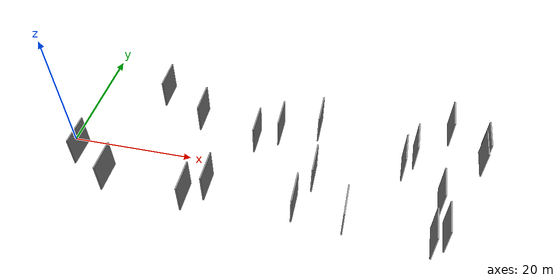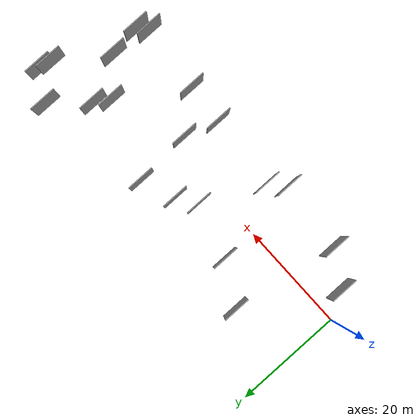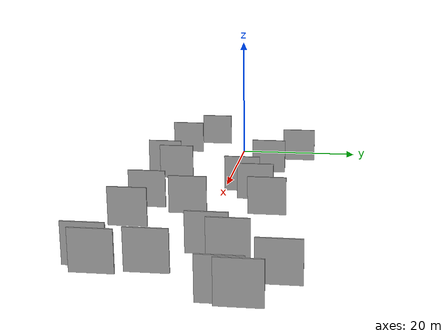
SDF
<sdf version="1.6">
 <world name="default">
  <scene>
   <sky><clouds><speed>12</speed></clouds></sky>
   <ambient>0.4 0.4 0.4 1</ambient>
   <background>0.7 0.7 0.7 1</background>
   <shadows>1</shadows>
  </scene>
  <gravity>0 0 -9.8066</gravity>
  <magnetic_field>6e-06 2.3e-05 -4.2e-05</magnetic_field>
  <physics default="0" name="default_physics" type="ode">
   <ode>
    <solver>
     <type>quick</type>
     <iters>10</iters>
     <sor>1.0</sor>
     <use_dynamic_moi_rescaling>0</use_dynamic_moi_rescaling>
    </solver>
    <constraints>
     <cfm>0</cfm>
     <erp>0.2</erp>
     <contact_max_correcting_vel>100</contact_max_correcting_vel>
     <contact_surface_layer>0.001</contact_surface_layer>
    </constraints>
   </ode>
   <max_step_size>0.004</max_step_size>
   <real_time_factor>1</real_time_factor>
   <real_time_update_rate>250</real_time_update_rate>
  </physics>
  <light name="sun" type="directional">
   <pose>0 0 10 0 0 0</pose>
   <diffuse>0.8 0.8 0.8 1</diffuse>
   <specular>0.2 0.2 0.2 1</specular>
   <attenuation>
    <range>1000</range>
    <constant>0.9</constant>
    <linear>0.01</linear>
    <quadratic>0.001</quadratic>
   </attenuation>
   <direction>-0.5 0.1 -0.9</direction>
  </light>
  <model name="grey_wall_1">
   <static>1</static>
   <pose>13.2451 10.8128 2.5 0.000000 0.000000 1.570796</pose>
   <link name="link">
    <pose>0 0 2.50 0 0 0</pose>
    <collision name="collision"><geometry><box><size>5.00 0.2 5.00</size></box></geometry></collision>
    <visual name="visual">
     <cast_shadows>0</cast_shadows>
     <geometry><box><size>5.00 0.2 5.00</size></box></geometry>
     <material>
      <script>
       <uri>model://grey_wall/materials/scripts</uri>
       <uri>model://grey_wall/materials/textures</uri>
       <name>vrc/grey_wall</name>
      </script>
     </material>
    </visual>
   </link>
  </model>
  <model name="grey_wall_2">
   <static>1</static>
   <pose>39.5926 8.1838 2.5 0.000000 0.000000 1.570796</pose>
   <link name="link">
    <pose>0 0 2.50 0 0 0</pose>
    <collision name="collision"><geometry><box><size>5.00 0.2 5.00</size></box></geometry></collision>
    <visual name="visual">
     <cast_shadows>0</cast_shadows>
     <geometry><box><size>5.00 0.2 5.00</size></box></geometry>
     <material>
      <script>
       <uri>model://grey_wall/materials/scripts</uri>
       <uri>model://grey_wall/materials/textures</uri>
       <name>vrc/grey_wall</name>
      </script>
     </material>
    </visual>
   </link>
  </model>
  <model name="grey_wall_3">
   <static>1</static>
   <pose>58.6448 -2.6094 2.5 0.000000 0.000000 1.570796</pose>
   <link name="link">
    <pose>0 0 2.50 0 0 0</pose>
    <collision name="collision"><geometry><box><size>5.00 0.2 5.00</size></box></geometry></collision>
    <visual name="visual">
     <cast_shadows>0</cast_shadows>
     <geometry><box><size>5.00 0.2 5.00</size></box></geometry>
     <material>
      <script>
       <uri>model://grey_wall/materials/scripts</uri>
       <uri>model://grey_wall/materials/textures</uri>
       <name>vrc/grey_wall</name>
      </script>
     </material>
    </visual>
   </link>
  </model>
  <model name="grey_wall_4">
   <static>1</static>
   <pose>20.6248 6.5667 2.5 0.000000 0.000000 1.570796</pose>
   <link name="link">
    <pose>0 0 2.50 0 0 0</pose>
    <collision name="collision"><geometry><box><size>5.00 0.2 5.00</size></box></geometry></collision>
    <visual name="visual">
     <cast_shadows>0</cast_shadows>
     <geometry><box><size>5.00 0.2 5.00</size></box></geometry>
     <material>
      <script>
       <uri>model://grey_wall/materials/scripts</uri>
       <uri>model://grey_wall/materials/textures</uri>
       <name>vrc/grey_wall</name>
      </script>
     </material>
    </visual>
   </link>
  </model>
  <model name="grey_wall_5">
   <static>1</static>
   <pose>53.0732 2.7881 2.5 0.000000 0.000000 1.570796</pose>
   <link name="link">
    <pose>0 0 2.50 0 0 0</pose>
    <collision name="collision"><geometry><box><size>5.00 0.2 5.00</size></box></geometry></collision>
    <visual name="visual">
     <cast_shadows>0</cast_shadows>
     <geometry><box><size>5.00 0.2 5.00</size></box></geometry>
     <material>
      <script>
       <uri>model://grey_wall/materials/scripts</uri>
       <uri>model://grey_wall/materials/textures</uri>
       <name>vrc/grey_wall</name>
      </script>
     </material>
    </visual>
   </link>
  </model>
  <model name="grey_wall_6">
   <static>1</static>
   <pose>30.2389 3.7222 2.5 0.000000 0.000000 1.570796</pose>
   <link name="link">
    <pose>0 0 2.50 0 0 0</pose>
    <collision name="collision"><geometry><box><size>5.00 0.2 5.00</size></box></geometry></collision>
    <visual name="visual">
     <cast_shadows>0</cast_shadows>
     <geometry><box><size>5.00 0.2 5.00</size></box></geometry>
     <material>
      <script>
       <uri>model://grey_wall/materials/scripts</uri>
       <uri>model://grey_wall/materials/textures</uri>
       <name>vrc/grey_wall</name>
      </script>
     </material>
    </visual>
   </link>
  </model>
  <model name="grey_wall_7">
   <static>1</static>
   <pose>33.6162 5.9820 2.5 0.000000 0.000000 1.570796</pose>
   <link name="link">
    <pose>0 0 2.50 0 0 0</pose>
    <collision name="collision"><geometry><box><size>5.00 0.2 5.00</size></box></geometry></collision>
    <visual name="visual">
     <cast_shadows>0</cast_shadows>
     <geometry><box><size>5.00 0.2 5.00</size></box></geometry>
     <material>
      <script>
       <uri>model://grey_wall/materials/scripts</uri>
       <uri>model://grey_wall/materials/textures</uri>
       <name>vrc/grey_wall</name>
      </script>
     </material>
    </visual>
   </link>
  </model>
  <model name="grey_wall_8">
   <static>1</static>
   <pose>9.9289 -8.1505 2.5 0.000000 0.000000 1.570796</pose>
   <link name="link">
    <pose>0 0 2.50 0 0 0</pose>
    <collision name="collision"><geometry><box><size>5.00 0.2 5.00</size></box></geometry></collision>
    <visual name="visual">
     <cast_shadows>0</cast_shadows>
     <geometry><box><size>5.00 0.2 5.00</size></box></geometry>
     <material>
      <script>
       <uri>model://grey_wall/materials/scripts</uri>
       <uri>model://grey_wall/materials/textures</uri>
       <name>vrc/grey_wall</name>
      </script>
     </material>
    </visual>
   </link>
  </model>
  <model name="grey_wall_9">
   <static>1</static>
   <pose>40.2540 -2.0365 2.5 0.000000 0.000000 1.570796</pose>
   <link name="link">
    <pose>0 0 2.50 0 0 0</pose>
    <collision name="collision"><geometry><box><size>5.00 0.2 5.00</size></box></geometry></collision>
    <visual name="visual">
     <cast_shadows>0</cast_shadows>
     <geometry><box><size>5.00 0.2 5.00</size></box></geometry>
     <material>
      <script>
       <uri>model://grey_wall/materials/scripts</uri>
       <uri>model://grey_wall/materials/textures</uri>
       <name>vrc/grey_wall</name>
      </script>
     </material>
    </visual>
   </link>
  </model>
  <model name="grey_wall_10">
   <static>1</static>
   <pose>25.2299 -6.8464 2.5 0.000000 0.000000 1.570796</pose>
   <link name="link">
    <pose>0 0 2.50 0 0 0</pose>
    <collision name="collision"><geometry><box><size>5.00 0.2 5.00</size></box></geometry></collision>
    <visual name="visual">
     <cast_shadows>0</cast_shadows>
     <geometry><box><size>5.00 0.2 5.00</size></box></geometry>
     <material>
      <script>
       <uri>model://grey_wall/materials/scripts</uri>
       <uri>model://grey_wall/materials/textures</uri>
       <name>vrc/grey_wall</name>
      </script>
     </material>
    </visual>
   </link>
  </model>
  <model name="grey_wall_11">
   <static>1</static>
   <pose>54.7142 5.4591 2.5 0.000000 0.000000 1.570796</pose>
   <link name="link">
    <pose>0 0 2.50 0 0 0</pose>
    <collision name="collision"><geometry><box><size>5.00 0.2 5.00</size></box></geometry></collision>
    <visual name="visual">
     <cast_shadows>0</cast_shadows>
     <geometry><box><size>5.00 0.2 5.00</size></box></geometry>
     <material>
      <script>
       <uri>model://grey_wall/materials/scripts</uri>
       <uri>model://grey_wall/materials/textures</uri>
       <name>vrc/grey_wall</name>
      </script>
     </material>
    </visual>
   </link>
  </model>
  <model name="grey_wall_12">
   <static>1</static>
   <pose>59.3959 -8.3452 2.5 0.000000 0.000000 1.570796</pose>
   <link name="link">
    <pose>0 0 2.50 0 0 0</pose>
    <collision name="collision"><geometry><box><size>5.00 0.2 5.00</size></box></geometry></collision>
    <visual name="visual">
     <cast_shadows>0</cast_shadows>
     <geometry><box><size>5.00 0.2 5.00</size></box></geometry>
     <material>
      <script>
       <uri>model://grey_wall/materials/scripts</uri>
       <uri>model://grey_wall/materials/textures</uri>
       <name>vrc/grey_wall</name>
      </script>
     </material>
    </visual>
   </link>
  </model>
  <model name="grey_wall_13">
   <static>1</static>
   <pose>57.6856 -9.7533 2.5 0.000000 0.000000 1.570796</pose>
   <link name="link">
    <pose>0 0 2.50 0 0 0</pose>
    <collision name="collision"><geometry><box><size>5.00 0.2 5.00</size></box></geometry></collision>
    <visual name="visual">
     <cast_shadows>0</cast_shadows>
     <geometry><box><size>5.00 0.2 5.00</size></box></geometry>
     <material>
      <script>
       <uri>model://grey_wall/materials/scripts</uri>
       <uri>model://grey_wall/materials/textures</uri>
       <name>vrc/grey_wall</name>
      </script>
     </material>
    </visual>
   </link>
  </model>
  <model name="grey_wall_14">
   <static>1</static>
   <pose>38.3532 -7.8992 2.5 0.000000 0.000000 1.570796</pose>
   <link name="link">
    <pose>0 0 2.50 0 0 0</pose>
    <collision name="collision"><geometry><box><size>5.00 0.2 5.00</size></box></geometry></collision>
    <visual name="visual">
     <cast_shadows>0</cast_shadows>
     <geometry><box><size>5.00 0.2 5.00</size></box></geometry>
     <material>
      <script>
       <uri>model://grey_wall/materials/scripts</uri>
       <uri>model://grey_wall/materials/textures</uri>
       <name>vrc/grey_wall</name>
      </script>
     </material>
    </visual>
   </link>
  </model>
  <model name="grey_wall_15">
   <static>1</static>
   <pose>45.5898 -8.4829 2.5 0.000000 0.000000 1.570796</pose>
   <link name="link">
    <pose>0 0 2.50 0 0 0</pose>
    <collision name="collision"><geometry><box><size>5.00 0.2 5.00</size></box></geometry></collision>
    <visual name="visual">
     <cast_shadows>0</cast_shadows>
     <geometry><box><size>5.00 0.2 5.00</size></box></geometry>
     <material>
      <script>
       <uri>model://grey_wall/materials/scripts</uri>
       <uri>model://grey_wall/materials/textures</uri>
       <name>vrc/grey_wall</name>
      </script>
     </material>
    </visual>
   </link>
  </model>
  <model name="grey_wall_16">
   <static>1</static>
   <pose>64.7360 6.1749 2.5 0.000000 0.000000 1.570796</pose>
   <link name="link">
    <pose>0 0 2.50 0 0 0</pose>
    <collision name="collision"><geometry><box><size>5.00 0.2 5.00</size></box></geometry></collision>
    <visual name="visual">
     <cast_shadows>0</cast_shadows>
     <geometry><box><size>5.00 0.2 5.00</size></box></geometry>
     <material>
      <script>
       <uri>model://grey_wall/materials/scripts</uri>
       <uri>model://grey_wall/materials/textures</uri>
       <name>vrc/grey_wall</name>
      </script>
     </material>
    </visual>
   </link>
  </model>
  <model name="grey_wall_17">
   <static>1</static>
   <pose>65.2441 8.0949 2.5 0.000000 0.000000 1.570796</pose>
   <link name="link">
    <pose>0 0 2.50 0 0 0</pose>
    <collision name="collision"><geometry><box><size>5.00 0.2 5.00</size></box></geometry></collision>
    <visual name="visual">
     <cast_shadows>0</cast_shadows>
     <geometry><box><size>5.00 0.2 5.00</size></box></geometry>
     <material>
      <script>
       <uri>model://grey_wall/materials/scripts</uri>
       <uri>model://grey_wall/materials/textures</uri>
       <name>vrc/grey_wall</name>
      </script>
     </material>
    </visual>
   </link>
  </model>
  <model name="grey_wall_18">
   <static>1</static>
   <pose>3.8742 -4.2425 2.5 0.000000 0.000000 1.570796</pose>
   <link name="link">
    <pose>0 0 2.50 0 0 0</pose>
    <collision name="collision"><geometry><box><size>5.00 0.2 5.00</size></box></geometry></collision>
    <visual name="visual">
     <cast_shadows>0</cast_shadows>
     <geometry><box><size>5.00 0.2 5.00</size></box></geometry>
     <material>
      <script>
       <uri>model://grey_wall/materials/scripts</uri>
       <uri>model://grey_wall/materials/textures</uri>
       <name>vrc/grey_wall</name>
      </script>
     </material>
    </visual>
   </link>
  </model>
  <model name="grey_wall_19">
   <static>1</static>
   <pose>22.4829 -9.2370 2.5 0.000000 0.000000 1.570796</pose>
   <link name="link">
    <pose>0 0 2.50 0 0 0</pose>
    <collision name="collision"><geometry><box><size>5.00 0.2 5.00</size></box></geometry></collision>
    <visual name="visual">
     <cast_shadows>0</cast_shadows>
     <geometry><box><size>5.00 0.2 5.00</size></box></geometry>
     <material>
      <script>
       <uri>model://grey_wall/materials/scripts</uri>
       <uri>model://grey_wall/materials/textures</uri>
       <name>vrc/grey_wall</name>
      </script>
     </material>
    </visual>
   </link>
  </model>
  <model name="grey_wall_20">
   <static>1</static>
   <pose>59.9686 11.4936 2.5 0.000000 0.000000 1.570796</pose>
   <link name="link">
    <pose>0 0 2.50 0 0 0</pose>
    <collision name="collision"><geometry><box><size>5.00 0.2 5.00</size></box></geometry></collision>
    <visual name="visual">
     <cast_shadows>0</cast_shadows>
     <geometry><box><size>5.00 0.2 5.00</size></box></geometry>
     <material>
      <script>
       <uri>model://grey_wall/materials/scripts</uri>
       <uri>model://grey_wall/materials/textures</uri>
       <name>vrc/grey_wall</name>
      </script>
     </material>
    </visual>
   </link>
  </model>
 </world>
</sdf>
